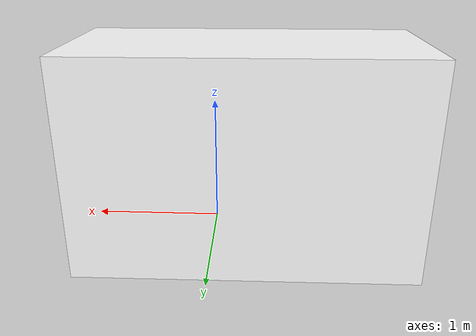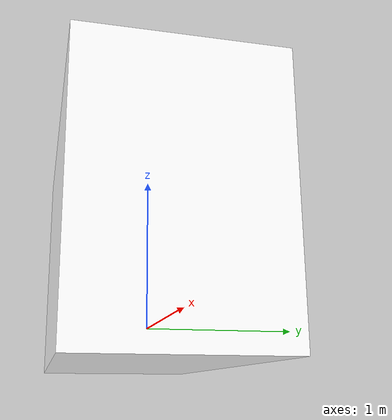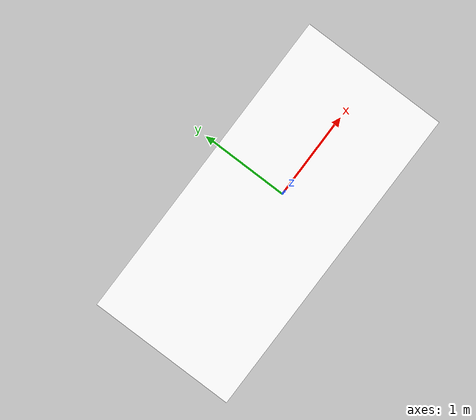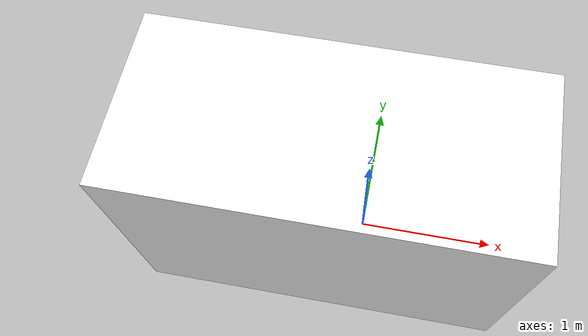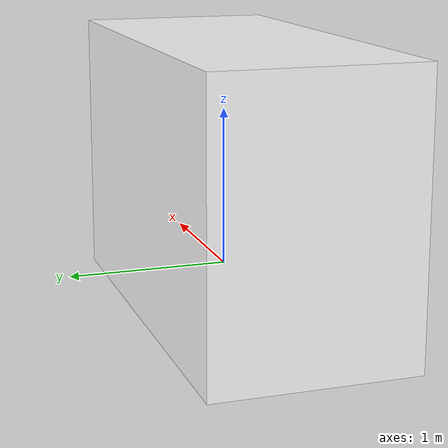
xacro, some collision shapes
<?xml version="1.0"?>
<robot xmlns:xacro="http://www.ros.org/wiki/xacro" name="simulation_caddy_ai2">

  <!-- ==================== PARAMS WITH DEFAULT VALUES ==================== -->
  <xacro:arg name="prefix" default="" />
  <xacro:arg name="is_simulation" default="true" />

  <!-- Import Caddy AI2 description of the vehicle macro -->
  <xacro:include filename="$(find caddy_ai2_ros2_gazebo_simulation)/description/urdf/caddy_ai2.urdf.xacro" />

  <xacro:caddy_ai2 prefix="$(arg prefix)" is_simulation="$(arg is_simulation)">
    <origin xyz="0 0 0.235" rpy="0 0 0" />
  </xacro:caddy_ai2>

</robot>

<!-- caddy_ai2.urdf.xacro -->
<robot xmlns:xacro="http://ros.org/wiki/xacro">

  <!-- Import Caddy AI2 Materials macro -->
  <xacro:include filename="$(find caddy_ai2_ros2_gazebo_simulation)/description/urdf/materials.urdf.xacro" />

  <xacro:macro name="caddy_ai2" params="prefix *origin is_simulation:=true">

    <!-- Define tire properties - Deli Tire 18x8.5-8 (inches) -->
    <xacro:property name="wheel_radius" value="0.235"/>
    <xacro:property name="wheel_width" value="0.22"/>
    <xacro:property name="wheel_mass" value="8.7"/>

    <!-- Define robot constants -->
    <xacro:property name="track_width" value="1"/>
    <xacro:property name="wheelbase" value="1.65"/>
    <xacro:property name="height" value="0.3"/>
    <xacro:property name="mass" value="590"/>
    <xacro:property name="inertial_origin_offset_x" value="-0.275"/>
    <xacro:property name="inertial_origin_offset_z" value="${0.3-wheel_radius}"/>
    <xacro:property name="max_steer_radius" value="0.5"/>

    <xacro:property name="vehicle_collision_width" value="1.230"/>
    <xacro:property name="vehicle_collision_length" value="2.660"/>
    <xacro:property name="vehicle_collision_height" value="1.7"/>
    <xacro:property name="vehicle_collision_offset_x" value="-0.25"/>

    <xacro:property name="PI" value="3.1415926535897931"/>

    <!-- Moments of inertia (rectangular box formulas) -->
    <xacro:property name="rect_Ixx" value="${(1/12) * mass * (track_width**2 + height**2)}"/>
    <xacro:property name="rect_Iyy" value="${(1/12) * mass * (wheelbase**2 + height**2)}"/>
    <xacro:property name="rect_Izz" value="${(1/12) * mass * (wheelbase**2 + track_width**2)}"/>

    <!-- Moments of inertia (cylinder formulas) -->
    <xacro:property name="wheel_Ixx" value="${(1/12) * wheel_mass * (3*wheel_radius**2 + wheel_width**2)}"/>
    <xacro:property name="wheel_Iyy" value="${(1/12) * wheel_mass * (3*wheel_radius**2 + wheel_width**2)}"/>
    <xacro:property name="wheel_Izz" value="${(1/2) * wheel_mass * wheel_radius**2}"/>

    <!-- Base Link -->
    <link name="${prefix}base_link" />

    <!-- Base Footprint -->
    <link name="${prefix}base_footprint"/>

    <joint name="${prefix}base_joint" type="fixed">
      <parent link="${prefix}base_link"/>
      <child link="${prefix}base_footprint"/>
      <origin xyz="0 0 -${2*wheel_radius}" rpy="0 0 0"/>
    </joint>

    <!-- Chassis -->
    <link name="${prefix}chassis_link">
      <inertial>
        <mass value="${mass}"/>
        <origin xyz="${inertial_origin_offset_x} 0 ${inertial_origin_offset_z}" rpy="0 0 0"/>
        <inertia
          ixx="${rect_Ixx}" ixy="0" ixz="0"
          iyy="${rect_Iyy}" iyz="0"
          izz="${rect_Izz}"/>
      </inertial>
      <visual>
        <geometry>
          <mesh filename="package://caddy_ai2_ros2_gazebo_simulation/description/meshes/stl/rbcar_chassis.stl"/>
        </geometry>
        <material name="white"/>
      </visual>
      <collision>
        <origin xyz="${vehicle_collision_offset_x} 0 ${vehicle_collision_height/2-wheel_radius}" rpy="0 0 0"/>
        <geometry>
          <box size="${vehicle_collision_length} ${vehicle_collision_width} ${vehicle_collision_height}"/>
        </geometry>
      </collision>
    </link>

    <joint name="${prefix}chassis_joint" type="fixed">
      <parent link="${prefix}base_link"/>
      <child link="${prefix}chassis_link"/>
      <axis xyz="0 0 1"/>
      <dynamics damping="0.2"/>
    </joint>

    <!-- Rear Wheels -->
    <!-- Rear Right Wheel -->
    <link name="${prefix}rear_right_wheel">
      <collision name="${prefix}rear_right_wheel_collision">
        <origin xyz="0 0 0" rpy="${PI/2} 0 ${PI/2}"/>
        <geometry>
          <cylinder length="${wheel_width}" radius="${wheel_radius}"/>
        </geometry>
      </collision>
      <visual>
        <origin xyz="0 0 0" rpy="${PI/2} 0 ${PI/2}"/>
        <geometry>
          <cylinder length="${wheel_width}" radius="${wheel_radius}"/>
        </geometry>
        <material name="black"/>
      </visual>
      <inertial>
        <origin xyz="0 0 0" rpy="${PI/2} 0 ${PI/2}"/>
        <mass value="${wheel_mass}"/>
        <inertia
          ixx="${wheel_Ixx}" ixy="0.0" ixz="0.0"
          iyy="${wheel_Iyy}" iyz="0.0"
          izz="${wheel_Izz}"/>
      </inertial>
    </link>

    <joint name="${prefix}rear_right_wheel_joint" type="continuous">
      <parent link="${prefix}chassis_link"/>
      <child link="${prefix}rear_right_wheel"/>
      <origin xyz="-${wheelbase/2} -${track_width/2} 0" rpy="0 0 ${PI/2}"/>
      <axis xyz="1 0 0"/>
    </joint>

    <!-- Rear Left Wheel -->
    <link name="${prefix}rear_left_wheel">
        <collision name="${prefix}rear_left_wheel_collision">
          <origin xyz="0 0 0" rpy="${PI/2} 0 ${PI/2}"/>
          <geometry>
            <cylinder length="${wheel_width}" radius="${wheel_radius}"/>
          </geometry>
        </collision>
        <visual>
          <origin xyz="0 0 0" rpy="${PI/2} 0 ${PI/2}"/>
          <geometry>
            <cylinder length="${wheel_width}" radius="${wheel_radius}"/>
          </geometry>
          <material name="black"/>
        </visual>
        <inertial>
          <origin xyz="0 0 0" rpy="${PI/2} 0 ${PI/2}"/>
          <mass value="${wheel_mass}"/>
          <inertia
            ixx="${wheel_Ixx}" ixy="0.0" ixz="0.0"
            iyy="${wheel_Iyy}" iyz="0.0"
            izz="${wheel_Izz}"/>
        </inertial>
    </link>

    <joint name="${prefix}rear_left_wheel_joint" type="continuous">
      <parent link="${prefix}chassis_link" />
      <child link="${prefix}rear_left_wheel" />
      <origin xyz="-${wheelbase/2} ${track_width/2} 0" rpy="0 0 ${PI/2}"/>
      <axis xyz="1 0 0"/>
    </joint>

    <!-- Front Wheels -->

    <!-- Front Right Steering -->
    <link name="${prefix}right_steering_link">
      <!-- Justication: inertial needed by simulation to avoid errors -->
      <inertial>
        <mass value="0.1"/>
        <inertia ixx="0.001" ixy="0.0" ixz="0.0" iyy="0.001" iyz="0.0" izz="0.001" />
      </inertial>
    </link>

    <joint name="${prefix}right_steering_joint" type="revolute">
      <origin xyz="${wheelbase/2} -${track_width/2} 0" rpy="0 0 0" />
      <parent link="${prefix}chassis_link" />
      <child link="${prefix}right_steering_link" />
      <axis xyz="0 0 1" />
      <dynamics damping="0.2" />
      <limit effort="1000.0" lower="-1.57" upper="1.57" velocity="30"/>
    </joint>

    <!-- Front Left Steering -->
    <link name="${prefix}left_steering_link">
      <!-- Justication: inertial needed by simulation to avoid errors -->
      <inertial>
        <mass value="0.1"/>
        <inertia ixx="0.001" ixy="0.0" ixz="0.0" iyy="0.001" iyz="0.0" izz="0.001" />
      </inertial>
    </link>

    <joint name="${prefix}left_steering_joint" type="revolute">
      <origin xyz="${wheelbase/2} ${track_width/2} 0" rpy="0 0 0" />
      <parent link="${prefix}chassis_link" />
      <child link="${prefix}left_steering_link" />
      <axis xyz="0 0 1" />
      <dynamics damping="0.2" />
      <limit effort="1000.0" lower="-1.57" upper="1.57" velocity="30"/>
    </joint>

    <!-- Front Right Wheel -->
    <link name="${prefix}front_right_wheel">
      <collision name="${prefix}front_right_wheel_collision">
        <geometry>
          <cylinder length="${wheel_width}" radius="${wheel_radius}"/>
        </geometry>
      </collision>
      <visual>
        <geometry>
          <cylinder length="${wheel_width}" radius="${wheel_radius}"/>
        </geometry>
        <material name="black" />
      </visual>
      <inertial>
        <mass value="${wheel_mass}"/>
        <inertia
          ixx="${wheel_Ixx}" ixy="0.0" ixz="0.0"
          iyy="${wheel_Iyy}" iyz="0.0"
          izz="${wheel_Izz}"/>
      </inertial>
    </link>

    <joint name="${prefix}front_right_wheel_joint" type="continuous">
      <origin xyz="0 0 0" rpy="-${PI/2} 0 0" />
      <parent link="${prefix}right_steering_link" />
      <child link="${prefix}front_right_wheel" />
      <axis xyz="0 0 1" />
      <dynamics damping="0.2" />
    </joint>

    <!-- Front Left Wheel -->
    <link name="${prefix}front_left_wheel">
      <collision name="${prefix}front_left_wheel_collision">
        <geometry>
          <cylinder length="${wheel_width}" radius="${wheel_radius}"/>
        </geometry>
      </collision>
      <visual>
        <geometry>
          <cylinder length="${wheel_width}" radius="${wheel_radius}"/>
        </geometry>
        <material name="black" />
      </visual>
      <inertial>
        <mass value="${wheel_mass}"/>
        <inertia
          ixx="${wheel_Ixx}" ixy="0.0" ixz="0.0"
          iyy="${wheel_Iyy}" iyz="0.0"
          izz="${wheel_Izz}"/>
      </inertial>
    </link>

    <joint name="${prefix}front_left_wheel_joint" type="continuous">
      <origin xyz="0 0 0" rpy="-${PI/2} 0 0" />
      <parent link="${prefix}left_steering_link" />
      <child link="${prefix}front_left_wheel" />
      <axis xyz="0 0 1" />
      <dynamics damping="0.2" />
    </joint>

    <xacro:if value="$(arg is_simulation)">
      <ros2_control name="GazeboSystem" type="system">
        <hardware>
          <plugin>gz_ros2_control/GazeboSimSystem</plugin>
        </hardware>
        <joint name="${prefix}rear_right_wheel_joint">
          <command_interface name="velocity" />
          <state_interface name="velocity" />
          <state_interface name="position" />
        </joint>
        <joint name="${prefix}rear_left_wheel_joint">
          <command_interface name="velocity" />
          <state_interface name="velocity" />
          <state_interface name="position" />
        </joint>
        <joint name="${prefix}right_steering_joint">
          <command_interface name="position" />
          <state_interface name="position" />
        </joint>
        <joint name="${prefix}left_steering_joint">
          <command_interface name="position" />
          <state_interface name="position" />
        </joint>
        <joint name="${prefix}front_right_wheel_joint">
          <state_interface name="position" />
          <state_interface name="velocity" />
        </joint>
        <joint name="${prefix}front_left_wheel_joint">
          <state_interface name="position" />
          <state_interface name="velocity" />
        </joint>
      </ros2_control>

      <gazebo>
        <plugin filename="gz_ros2_control-system" name="gz_ros2_control::GazeboSimROS2ControlPlugin">
          <parameters>$(find caddy_ai2_ros2_gazebo_simulation)/bringup/config/controllers_simulation.yaml</parameters>
        </plugin>
      </gazebo>

      <gazebo reference="${prefix}rear_right_wheel">
        <plugin filename="gz-sim-contact-system" name="gz::sim::systems::Contact"/>

        <sensor name="contact_sensor" type="contact">
          <always_on>true</always_on>
          <update_rate>1000</update_rate>
          <contact>
            <collision>${prefix}rear_right_wheel_collision</collision>
          </contact>
        </sensor>
      </gazebo>

      <gazebo reference="${prefix}rear_left_wheel">
        <plugin filename="gz-sim-contact-system" name="gz::sim::systems::Contact"/>

        <sensor name="contact_sensor" type="contact">
          <always_on>true</always_on>
          <update_rate>1000</update_rate>
          <contact>
            <collision>${prefix}rear_left_wheel_collision</collision>
          </contact>
        </sensor>
      </gazebo>

      <gazebo reference="${prefix}front_right_wheel">
        <plugin filename="gz-sim-contact-system" name="gz::sim::systems::Contact"/>

        <sensor name="contact_sensor" type="contact">
          <always_on>true</always_on>
          <update_rate>1000</update_rate>
          <contact>
            <collision>${prefix}front_right_wheel_collision</collision>
          </contact>
        </sensor>
      </gazebo>

      <gazebo reference="${prefix}front_left_wheel">
        <plugin filename="gz-sim-contact-system" name="gz::sim::systems::Contact"/>

        <sensor name="contact_sensor" type="contact">
          <always_on>true</always_on>
          <update_rate>1000</update_rate>
          <contact>
            <collision>${prefix}front_left_wheel_collision</collision>
          </contact>
        </sensor>
      </gazebo>

    </xacro:if>

  </xacro:macro>

</robot>

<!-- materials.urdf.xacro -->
<robot xmlns:xacro="http://ros.org/wiki/xacro">

  <material name="black">
    <color rgba="0.0 0.0 0.0 1.0"/>
  </material>

  <material name="blue">
    <color rgba="0.0 0.0 0.8 1.0"/>
  </material>

  <material name="green">
    <color rgba="0.0 0.8 0.0 1.0"/>
  </material>

  <material name="grey">
    <color rgba="0.2 0.2 0.2 1.0"/>
  </material>

  <material name="orange">
    <color rgba="${255/255} ${108/255} ${10/255} 1.0"/>
  </material>

  <material name="brown">
    <color rgba="${222/255} ${207/255} ${195/255} 1.0"/>
  </material>

  <material name="red">
    <color rgba="0.8 0.0 0.0 1.0"/>
  </material>

  <material name="yellow">
    <color rgba="1.0 1.0 0.0 1.0"/>
  </material>

  <material name="white">
    <color rgba="1.0 1.0 1.0 1.0"/>
  </material>

  <material name="invisible">
    <color rgba="0.0 0.0 0.0 0.0"/>
  </material>

</robot>
